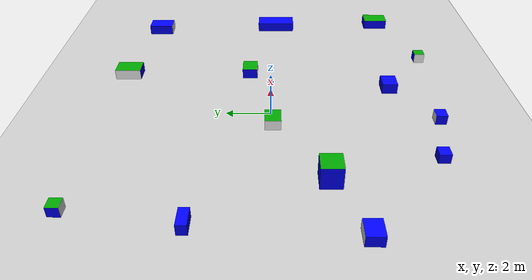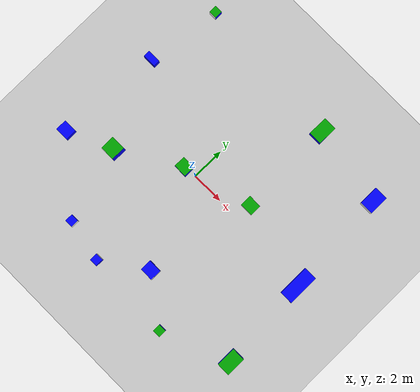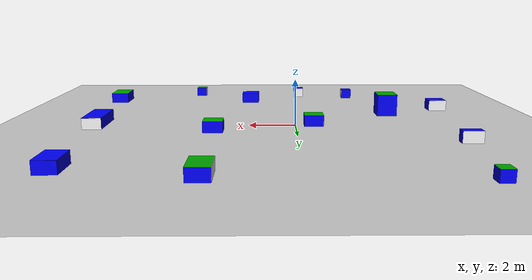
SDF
<sdf version="1.10">
 <world name="default">
  <gravity>0 0 -9.8000000000000007</gravity>
  <magnetic_field>6.0000000000000002e-06 2.3e-05 -4.1999999999999998e-05</magnetic_field>
  <atmosphere type="adiabatic"/>
  <physics name="default_physics" default="false" type="ode">
   <max_step_size>0.001</max_step_size>
   <real_time_factor>1</real_time_factor>
   <real_time_update_rate>1000</real_time_update_rate>
  </physics>
  <scene>
   <ambient>0.400000006 0.400000006 0.400000006 1</ambient>
   <background>0.699999988 0.699999988 0.699999988 1</background>
   <shadows>true</shadows>
  </scene>
  <audio><device>default</device></audio>
  <spherical_coordinates>
   <surface_model>EARTH_WGS84</surface_model>
   <latitude_deg>0</latitude_deg>
   <longitude_deg>0</longitude_deg>
   <elevation>0</elevation>
   <heading_deg>0</heading_deg>
  </spherical_coordinates>
  <model name="ground_plane">
   <static>true</static>
   <link name="link">
    <collision name="collision">
     <geometry><plane><normal>0 0 1</normal><size>100 100</size></plane></geometry>
    </collision>
    <visual name="visual">
     <cast_shadows>false</cast_shadows>
     <geometry><plane><normal>0 0 1</normal><size>100 100</size></plane></geometry>
     <material>
      <script><uri>file://media/materials/scripts/gazebo.material</uri><name>Gazebo/Grey</name></script>
     </material>
    </visual>
    <inertial>
     <mass>1</mass>
     <inertia><ixx>1</ixx><ixy>0</ixy><ixz>0</ixz><iyy>1</iyy><iyz>0</iyz><izz>1</izz></inertia>
    </inertial>
   </link>
  </model>
  <model name="unit_box_clone">
   <pose>-7.103489875793457 -3.4565563201904297 0.24306599795818329 0 0 0</pose>
   <link name="link">
    <inertial>
     <mass>1</mass>
     <inertia>
      <ixx>0.166667</ixx>
      <ixy>0</ixy>
      <ixz>0</ixz>
      <iyy>0.166667</iyy>
      <iyz>0</iyz>
      <izz>0.166667</izz>
     </inertia>
    </inertial>
    <collision name="collision">
     <geometry><box><size>0.832545 0.712184 0.486131</size></box></geometry>
    </collision>
    <visual name="visual">
     <geometry><box><size>0.832545 0.712184 0.486131</size></box></geometry>
     <material>
      <ambient>0 0 1 1</ambient>
      <diffuse>0 0 1 1</diffuse>
      <specular>0.1 0.1 0.1 1</specular>
      <emissive>0 0 0 1</emissive>
     </material>
    </visual>
    <visual name="qr_side">
     <pose>0 0.35709 0 0 0 0</pose>
     <geometry><box><size>0.83254 0.004 0.48613</size></box></geometry>
     <material>
      <ambient>1 1 1 1</ambient>
      <diffuse>1 1 1 1</diffuse>
      <pbr><metal><albedo_map>file:///home/marangoz/qr/qr_textures/qr_dag.png</albedo_map></metal></pbr>
     </material>
    </visual>
    <visual name="top_color">
     <pose>0 0 0.24407 0 0 0</pose>
     <geometry><box><size>0.83254 0.71218 0.004</size></box></geometry>
     <material><ambient>0 0 1 1</ambient><diffuse>0 0 1 1</diffuse></material>
    </visual>
   </link>
   <static>false</static>
  </model>
  <model name="unit_box_clone_clone">
   <pose>-0.80090302228927612 -0.093987345695495605 0.24306599795818329 0 0 0</pose>
   <link name="link">
    <inertial>
     <mass>1</mass>
     <inertia>
      <ixx>0.166667</ixx>
      <ixy>0</ixy>
      <ixz>0</ixz>
      <iyy>0.166667</iyy>
      <iyz>0</iyz>
      <izz>0.166667</izz>
     </inertia>
    </inertial>
    <collision name="collision">
     <geometry><box><size>0.832545 0.712184 0.486131</size></box></geometry>
    </collision>
    <visual name="visual">
     <geometry><box><size>0.832545 0.712184 0.486131</size></box></geometry>
     <material>
      <ambient>0 0 1 1</ambient>
      <diffuse>0 0 1 1</diffuse>
      <specular>0.1 0.1 0.1 1</specular>
      <emissive>0 0 0 1</emissive>
     </material>
    </visual>
    <visual name="qr_side">
     <pose>-0.41727 0 0 0 0 -1.57080</pose>
     <geometry><box><size>0.71218 0.004 0.48613</size></box></geometry>
     <material>
      <ambient>1 1 1 1</ambient>
      <diffuse>1 1 1 1</diffuse>
      <pbr><metal><albedo_map>file:///home/marangoz/qr/qr_textures/qr_bina.png</albedo_map></metal></pbr>
     </material>
    </visual>
    <visual name="top_color">
     <pose>0 0 0.24407 0 0 0</pose>
     <geometry><box><size>0.83254 0.71218 0.004</size></box></geometry>
     <material><ambient>0 0.65 0 1</ambient><diffuse>0 0.65 0 1</diffuse></material>
    </visual>
   </link>
   <static>false</static>
  </model>
  <model name="unit_box_clone_clone_1">
   <pose>2.0755400657653809 -5.5979852676391602 0.24306599795818329 0 0 0</pose>
   <link name="link">
    <inertial>
     <mass>1</mass>
     <inertia>
      <ixx>0.166667</ixx>
      <ixy>0</ixy>
      <ixz>0</ixz>
      <iyy>0.166667</iyy>
      <iyz>0</iyz>
      <izz>0.166667</izz>
     </inertia>
    </inertial>
    <collision name="collision">
     <geometry><box><size>0.832545 0.712184 0.486131</size></box></geometry>
    </collision>
    <visual name="visual">
     <geometry><box><size>0.832545 0.712184 0.486131</size></box></geometry>
     <material>
      <ambient>0 0 1 1</ambient>
      <diffuse>0 0 1 1</diffuse>
      <specular>0.1 0.1 0.1 1</specular>
      <emissive>0 0 0 1</emissive>
     </material>
    </visual>
    <visual name="qr_side">
     <pose>0.41727 0 0 0 0 1.57080</pose>
     <geometry><box><size>0.71218 0.004 0.48613</size></box></geometry>
     <material>
      <ambient>1 1 1 1</ambient>
      <diffuse>1 1 1 1</diffuse>
      <pbr><metal><albedo_map>file:///home/marangoz/qr/qr_textures/qr_kayalik.png</albedo_map></metal></pbr>
     </material>
    </visual>
    <visual name="top_color">
     <pose>0 0 0.24407 0 0 0</pose>
     <geometry><box><size>0.83254 0.71218 0.004</size></box></geometry>
     <material><ambient>0 0 1 1</ambient><diffuse>0 0 1 1</diffuse></material>
    </visual>
   </link>
   <static>false</static>
  </model>
  <model name="unit_box_clone_clone_2">
   <pose>3.45364 1.03602 0.243066 0 0 0</pose>
   <link name="link">
    <inertial>
     <mass>1</mass>
     <inertia>
      <ixx>0.166667</ixx>
      <ixy>0</ixy>
      <ixz>0</ixz>
      <iyy>0.166667</iyy>
      <iyz>0</iyz>
      <izz>0.166667</izz>
     </inertia>
    </inertial>
    <collision name="collision">
     <geometry><box><size>0.832545 0.712184 0.486131</size></box></geometry>
    </collision>
    <visual name="visual">
     <geometry><box><size>0.832545 0.712184 0.486131</size></box></geometry>
     <material>
      <ambient>0 0 1 1</ambient>
      <diffuse>0 0 1 1</diffuse>
      <specular>0.1 0.1 0.1 1</specular>
      <emissive>0 0 0 1</emissive>
     </material>
    </visual>
    <visual name="qr_side">
     <pose>0 -0.35709 0 0 0 3.14159</pose>
     <geometry><box><size>0.83254 0.004 0.48613</size></box></geometry>
     <material>
      <ambient>1 1 1 1</ambient>
      <diffuse>1 1 1 1</diffuse>
      <pbr><metal><albedo_map>file:///home/marangoz/qr/qr_textures/qr_orman.png</albedo_map></metal></pbr>
     </material>
    </visual>
    <visual name="top_color">
     <pose>0 0 0.24407 0 0 0</pose>
     <geometry><box><size>0.83254 0.71218 0.004</size></box></geometry>
     <material><ambient>0 0.65 0 1</ambient><diffuse>0 0.65 0 1</diffuse></material>
    </visual>
   </link>
   <static>false</static>
  </model>
  <model name="unit_box_clone_clone_2_clone">
   <pose>-6.6254668235778809 2.9617400169372559 0.2430649995803833 0 0 0</pose>
   <link name="link">
    <inertial>
     <mass>1</mass>
     <inertia>
      <ixx>0.166667</ixx>
      <ixy>0</ixy>
      <ixz>0</ixz>
      <iyy>0.166667</iyy>
      <iyz>0</iyz>
      <izz>0.166667</izz>
     </inertia>
    </inertial>
    <collision name="collision"><geometry><box><size>0.832545 0.41249 0.486131</size></box></geometry></collision>
    <visual name="visual">
     <geometry><box><size>0.832545 0.41249 0.486131</size></box></geometry>
     <material>
      <ambient>0 0 1 1</ambient>
      <diffuse>0 0 1 1</diffuse>
      <specular>0.1 0.1 0.1 1</specular>
      <emissive>0 0 0 1</emissive>
     </material>
    </visual>
    <visual name="qr_side">
     <pose>0 0.20725 0 0 0 0</pose>
     <geometry><box><size>0.83254 0.004 0.48613</size></box></geometry>
     <material>
      <ambient>1 1 1 1</ambient>
      <diffuse>1 1 1 1</diffuse>
      <pbr><metal><albedo_map>file:///home/marangoz/qr/qr_textures/qr_col.png</albedo_map></metal></pbr>
     </material>
    </visual>
    <visual name="top_color">
     <pose>0 0 0.24407 0 0 0</pose>
     <geometry><box><size>0.83254 0.41249 0.004</size></box></geometry>
     <material><ambient>0 0 1 1</ambient><diffuse>0 0 1 1</diffuse></material>
    </visual>
   </link>
   <static>false</static>
  </model>
  <model name="unit_box_clone_clone_2_clone_clone">
   <pose>8.9339370727539062 -5.9791021347045898 0.24306599795818329 0 0 -3.0000001061215664e-06</pose>
   <link name="link">
    <inertial>
     <mass>1</mass>
     <inertia>
      <ixx>0.166667</ixx>
      <ixy>0</ixy>
      <ixz>0</ixz>
      <iyy>0.166667</iyy>
      <iyz>0</iyz>
      <izz>0.166667</izz>
     </inertia>
    </inertial>
    <collision name="collision"><geometry><box><size>0.832545 1.22961 0.486131</size></box></geometry></collision>
    <visual name="visual">
     <geometry><box><size>0.832545 1.22961 0.486131</size></box></geometry>
     <material>
      <ambient>0 0 1 1</ambient>
      <diffuse>0 0 1 1</diffuse>
      <specular>0.1 0.1 0.1 1</specular>
      <emissive>0 0 0 1</emissive>
     </material>
    </visual>
    <visual name="qr_side">
     <pose>0.41727 0 0 0 0 1.57080</pose>
     <geometry><box><size>1.22961 0.004 0.48613</size></box></geometry>
     <material>
      <ambient>1 1 1 1</ambient>
      <diffuse>1 1 1 1</diffuse>
      <pbr><metal><albedo_map>file:///home/marangoz/qr/qr_textures/qr_bataklik.png</albedo_map></metal></pbr>
     </material>
    </visual>
    <visual name="top_color">
     <pose>0 0 0.24407 0 0 0</pose>
     <geometry><box><size>0.83254 1.22961 0.004</size></box></geometry>
     <material><ambient>0 0.65 0 1</ambient><diffuse>0 0.65 0 1</diffuse></material>
    </visual>
   </link>
   <static>false</static>
  </model>
  <model name="unit_box_clone_clone_2_clone_clone_clone">
   <pose>8.2013530731201172 6.2368936538696289 0.24306599795818329 0 0 -3.0000001061215664e-06</pose>
   <link name="link">
    <inertial>
     <mass>1</mass>
     <inertia>
      <ixx>0.166667</ixx>
      <ixy>0</ixy>
      <ixz>0</ixz>
      <iyy>0.166667</iyy>
      <iyz>0</iyz>
      <izz>0.166667</izz>
     </inertia>
    </inertial>
    <collision name="collision"><geometry><box><size>0.832545 1.22961 0.486131</size></box></geometry></collision>
    <visual name="visual">
     <geometry><box><size>0.832545 1.22961 0.486131</size></box></geometry>
     <material>
      <ambient>0 0 1 1</ambient>
      <diffuse>0 0 1 1</diffuse>
      <specular>0.1 0.1 0.1 1</specular>
      <emissive>0 0 0 1</emissive>
     </material>
    </visual>
    <visual name="qr_side">
     <pose>0 -0.61581 0 0 0 3.14159</pose>
     <geometry><box><size>0.83254 0.004 0.48613</size></box></geometry>
     <material>
      <ambient>1 1 1 1</ambient>
      <diffuse>1 1 1 1</diffuse>
      <pbr><metal><albedo_map>file:///home/marangoz/qr/qr_textures/qr_vadi.png</albedo_map></metal></pbr>
     </material>
    </visual>
    <visual name="top_color">
     <pose>0 0 0.24407 0 0 0</pose>
     <geometry><box><size>0.83254 1.22961 0.004</size></box></geometry>
     <material><ambient>0 0 1 1</ambient><diffuse>0 0 1 1</diffuse></material>
    </visual>
   </link>
   <static>false</static>
  </model>
  <model name="unit_box_clone_clone_2_clone_clone_clone_0">
   <pose>3.3122975826263419 7.0091667175292969 0.24306599795818329 0 0 -3.0000001061215664e-06</pose>
   <link name="link">
    <inertial>
     <mass>1</mass>
     <inertia>
      <ixx>0.166667</ixx>
      <ixy>0</ixy>
      <ixz>0</ixz>
      <iyy>0.166667</iyy>
      <iyz>0</iyz>
      <izz>0.166667</izz>
     </inertia>
    </inertial>
    <collision name="collision"><geometry><box><size>0.832545 1.22961 0.486131</size></box></geometry></collision>
    <visual name="visual">
     <geometry><box><size>0.832545 1.22961 0.486131</size></box></geometry>
     <material>
      <ambient>0 0 1 1</ambient>
      <diffuse>0 0 1 1</diffuse>
      <specular>0.1 0.1 0.1 1</specular>
      <emissive>0 0 0 1</emissive>
     </material>
    </visual>
    <visual name="qr_side">
     <pose>-0.41727 0 0 0 0 -1.57080</pose>
     <geometry><box><size>1.22961 0.004 0.48613</size></box></geometry>
     <material>
      <ambient>1 1 1 1</ambient>
      <diffuse>1 1 1 1</diffuse>
      <pbr><metal><albedo_map>file:///home/marangoz/qr/qr_textures/qr_plaj.png</albedo_map></metal></pbr>
     </material>
    </visual>
    <visual name="top_color">
     <pose>0 0 0.24407 0 0 0</pose>
     <geometry><box><size>0.83254 1.22961 0.004</size></box></geometry>
     <material><ambient>0 0.65 0 1</ambient><diffuse>0 0.65 0 1</diffuse></material>
    </visual>
   </link>
   <static>false</static>
  </model>
  <model name="unit_box_clone_clone_2_clone_clone_clone_1">
   <pose>8.5956010818481428 -0.24985511600971216 0.24306599795818329 0 0 -3.0000001061215664e-06</pose>
   <link name="link">
    <inertial>
     <mass>1</mass>
     <inertia>
      <ixx>0.166667</ixx>
      <ixy>0</ixy>
      <ixz>0</ixz>
      <iyy>0.166667</iyy>
      <iyz>0</iyz>
      <izz>0.166667</izz>
     </inertia>
    </inertial>
    <collision name="collision"><geometry><box><size>0.832545 1.95429 0.486131</size></box></geometry></collision>
    <visual name="visual">
     <geometry><box><size>0.832545 1.95429 0.486131</size></box></geometry>
     <material>
      <ambient>0 0 1 1</ambient>
      <diffuse>0 0 1 1</diffuse>
      <specular>0.1 0.1 0.1 1</specular>
      <emissive>0 0 0 1</emissive>
     </material>
    </visual>
    <visual name="qr_side">
     <pose>0 0.97815 0 0 0 0</pose>
     <geometry><box><size>0.83254 0.004 0.48613</size></box></geometry>
     <material>
      <ambient>1 1 1 1</ambient>
      <diffuse>1 1 1 1</diffuse>
      <pbr><metal><albedo_map>file:///home/marangoz/qr/qr_textures/qr_tunel.png</albedo_map></metal></pbr>
     </material>
    </visual>
    <visual name="top_color">
     <pose>0 0 0.24407 0 0 0</pose>
     <geometry><box><size>0.83254 1.95429 0.004</size></box></geometry>
     <material><ambient>0 0 1 1</ambient><diffuse>0 0 1 1</diffuse></material>
    </visual>
   </link>
   <static>false</static>
  </model>
  <light name="sun" type="directional">
   <pose>0 0 10 0 0 0</pose>
   <intensity>1</intensity>
   <direction>-0.5 0.1 -0.9</direction>
   <diffuse>0.800000012 0.800000012 0.800000012 1</diffuse>
   <specular>0.200000003 0.200000003 0.200000003 1</specular>
   <attenuation>
    <range>1000</range>
    <linear>0.01</linear>
    <constant>0.9</constant>
    <quadratic>0.001</quadratic>
   </attenuation>
   <spot><inner_angle>0</inner_angle><outer_angle>0</outer_angle><falloff>0</falloff></spot>
  </light>
  <model name="new_nehir">
   <pose>-4.3726 -2.2717 0.5 0 0 0</pose>
   <static>false</static>
   <link name="link">
    <inertial>
     <inertia>
      <ixx>0.150833</ixx>
      <ixy>0.000000</ixy>
      <ixz>0.000000</ixz>
      <iyy>0.150833</iyy>
      <iyz>0.000000</iyz>
      <izz>0.135000</izz>
     </inertia>
     <mass>1.0</mass>
    </inertial>
    <collision name="collision"><geometry><box><size>0.90000 0.90000 1.00000</size></box></geometry></collision>
    <visual name="visual">
     <geometry><box><size>0.90000 0.90000 1.00000</size></box></geometry>
     <material><ambient>0 0 1 1</ambient><diffuse>0 0 1 1</diffuse></material>
    </visual>
    <visual name="qr_side">
     <pose>0 -0.45100 0 0 0 3.14159</pose>
     <geometry><box><size>0.90000 0.004 1.00000</size></box></geometry>
     <material>
      <ambient>1 1 1 1</ambient>
      <diffuse>1 1 1 1</diffuse>
      <pbr><metal><albedo_map>file:///home/marangoz/qr/qr_textures/qr_nehir.png</albedo_map></metal></pbr>
     </material>
    </visual>
    <visual name="top_color">
     <pose>0 0 0.50100 0 0 0</pose>
     <geometry><box><size>0.90000 0.90000 0.004</size></box></geometry>
     <material><ambient>0 0.65 0 1</ambient><diffuse>0 0.65 0 1</diffuse></material>
    </visual>
   </link>
  </model>
  <model name="new_gol">
   <pose>-3.1117 -6.8479 0.2229 0 0 0</pose>
   <static>false</static>
   <link name="link">
    <inertial>
     <inertia>
      <ixx>0.037708</ixx>
      <ixy>0.000000</ixy>
      <ixz>0.000000</ixz>
      <iyy>0.037708</iyy>
      <iyz>0.000000</iyz>
      <izz>0.041667</izz>
     </inertia>
     <mass>1.0</mass>
    </inertial>
    <collision name="collision"><geometry><box><size>0.50000 0.50000 0.45000</size></box></geometry></collision>
    <visual name="visual">
     <geometry><box><size>0.50000 0.50000 0.45000</size></box></geometry>
     <material><ambient>0 0 1 1</ambient><diffuse>0 0 1 1</diffuse></material>
    </visual>
    <visual name="qr_side">
     <pose>0.25100 0 0 0 0 1.57080</pose>
     <geometry><box><size>0.50000 0.004 0.45000</size></box></geometry>
     <material>
      <ambient>1 1 1 1</ambient>
      <diffuse>1 1 1 1</diffuse>
      <pbr><metal><albedo_map>file:///home/marangoz/qr/qr_textures/qr_gol.png</albedo_map></metal></pbr>
     </material>
    </visual>
    <visual name="top_color">
     <pose>0 0 0.22600 0 0 0</pose>
     <geometry><box><size>0.50000 0.50000 0.004</size></box></geometry>
     <material><ambient>0 0 1 1</ambient><diffuse>0 0 1 1</diffuse></material>
    </visual>
   </link>
  </model>
  <model name="new_havaalan">
   <pose>4.8639 -7.636 0.2229 0 0 0</pose>
   <static>false</static>
   <link name="link">
    <inertial>
     <inertia>
      <ixx>0.037708</ixx>
      <ixy>0.000000</ixy>
      <ixz>0.000000</ixz>
      <iyy>0.037708</iyy>
      <iyz>0.000000</iyz>
      <izz>0.041667</izz>
     </inertia>
     <mass>1.0</mass>
    </inertial>
    <collision name="collision"><geometry><box><size>0.50000 0.50000 0.45000</size></box></geometry></collision>
    <visual name="visual">
     <geometry><box><size>0.50000 0.50000 0.45000</size></box></geometry>
     <material><ambient>0 0 1 1</ambient><diffuse>0 0 1 1</diffuse></material>
    </visual>
    <visual name="qr_side">
     <pose>-0.25100 0 0 0 0 -1.57080</pose>
     <geometry><box><size>0.50000 0.004 0.45000</size></box></geometry>
     <material>
      <ambient>1 1 1 1</ambient>
      <diffuse>1 1 1 1</diffuse>
      <pbr><metal><albedo_map>file:///home/marangoz/qr/qr_textures/qr_havaalan.png</albedo_map></metal></pbr>
     </material>
    </visual>
    <visual name="top_color">
     <pose>0 0 0.22600 0 0 0</pose>
     <geometry><box><size>0.50000 0.50000 0.004</size></box></geometry>
     <material><ambient>0 0.65 0 1</ambient><diffuse>0 0.65 0 1</diffuse></material>
    </visual>
   </link>
  </model>
  <model name="new_kopru">
   <pose>-0.5263 -7.3913 0.2229 0 0 0</pose>
   <static>false</static>
   <link name="link">
    <inertial>
     <inertia>
      <ixx>0.037708</ixx>
      <ixy>0.000000</ixy>
      <ixz>0.000000</ixz>
      <iyy>0.037708</iyy>
      <iyz>0.000000</iyz>
      <izz>0.041667</izz>
     </inertia>
     <mass>1.0</mass>
    </inertial>
    <collision name="collision"><geometry><box><size>0.50000 0.50000 0.45000</size></box></geometry></collision>
    <visual name="visual">
     <geometry><box><size>0.50000 0.50000 0.45000</size></box></geometry>
     <material><ambient>0 0 1 1</ambient><diffuse>0 0 1 1</diffuse></material>
    </visual>
    <visual name="qr_side">
     <pose>0 0.25100 0 0 0 0</pose>
     <geometry><box><size>0.50000 0.004 0.45000</size></box></geometry>
     <material>
      <ambient>1 1 1 1</ambient>
      <diffuse>1 1 1 1</diffuse>
      <pbr><metal><albedo_map>file:///home/marangoz/qr/qr_textures/qr_kopru.png</albedo_map></metal></pbr>
     </material>
    </visual>
    <visual name="top_color">
     <pose>0 0 0.22600 0 0 0</pose>
     <geometry><box><size>0.50000 0.50000 0.004</size></box></geometry>
     <material><ambient>0 0 1 1</ambient><diffuse>0 0 1 1</diffuse></material>
    </visual>
   </link>
  </model>
  <model name="new_maden">
   <pose>-5.9858 7.5445 0.2229 0 0 0</pose>
   <static>false</static>
   <link name="link">
    <inertial>
     <inertia>
      <ixx>0.037708</ixx>
      <ixy>0.000000</ixy>
      <ixz>0.000000</ixz>
      <iyy>0.037708</iyy>
      <iyz>0.000000</iyz>
      <izz>0.041667</izz>
     </inertia>
     <mass>1.0</mass>
    </inertial>
    <collision name="collision"><geometry><box><size>0.50000 0.50000 0.45000</size></box></geometry></collision>
    <visual name="visual">
     <geometry><box><size>0.50000 0.50000 0.45000</size></box></geometry>
     <material><ambient>0 0 1 1</ambient><diffuse>0 0 1 1</diffuse></material>
    </visual>
    <visual name="qr_side">
     <pose>0 -0.25100 0 0 0 3.14159</pose>
     <geometry><box><size>0.50000 0.004 0.45000</size></box></geometry>
     <material>
      <ambient>1 1 1 1</ambient>
      <diffuse>1 1 1 1</diffuse>
      <pbr><metal><albedo_map>file:///home/marangoz/qr/qr_textures/qr_maden.png</albedo_map></metal></pbr>
     </material>
    </visual>
    <visual name="top_color">
     <pose>0 0 0.22600 0 0 0</pose>
     <geometry><box><size>0.50000 0.50000 0.004</size></box></geometry>
     <material><ambient>0 0.65 0 1</ambient><diffuse>0 0.65 0 1</diffuse></material>
    </visual>
   </link>
  </model>
 </world>
</sdf>
